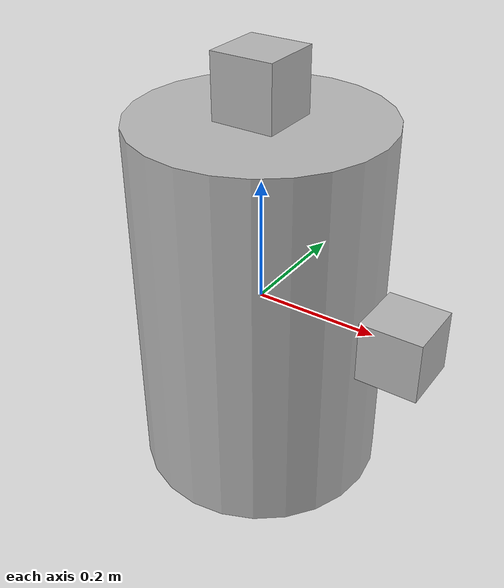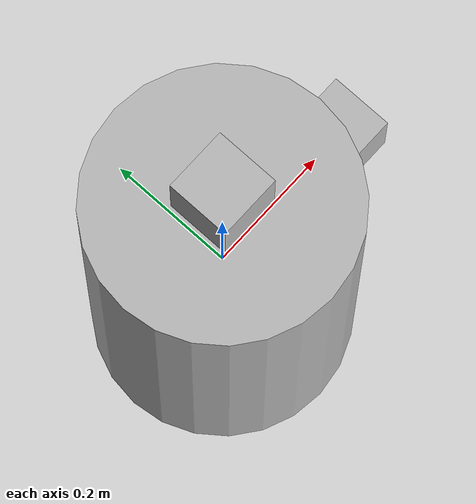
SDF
<?xml version='1.0'?>
<sdf version="1.4">
<model name="payload">
  <link name="body">
    <visual name="payload_vis">
      <geometry>
        <cylinder>
        	<length>0.6</length>
        	<radius>0.2</radius>
        </cylinder>
      </geometry>
    </visual>
    <collision name="payload_col">
      <geometry>
      	<cylinder>
        	<length>0.6</length>
        	<radius>0.2</radius>
        </cylinder>
      </geometry>
    </collision>
    <inertial>
      <mass>10</mass>
      <inertia>
      	 <ixx>4</ixx>
      	 <ixy>.5</ixy>
      	 <ixz>.5</ixz>
      	 <iyy>4</iyy>
      	 <iyz>0.0</iyz>
      	 <izz>2</izz>
      </inertia>
    </inertial>
    <gravity>0</gravity>
    </link>
    <link name="cubesat1">
      <pose> 0 0 .35 0 0 0 </pose>
      <visual name="sat1_vis">
        <geometry>
          <box>
            <size>.1 .1 .1 </size>
          </box>
        </geometry>
      </visual>
      <collision name="sat1_col">
        <geometry>
          <box>
            <size>.1 .1 .1 </size>
          </box>
          </geometry>
      </collision>
      <gravity>0</gravity>
    </link>
    <link name="cubesat2">
      <pose> .25 0 0 0 0 0 </pose>
      <visual name="sat1_vis">
        <geometry>
          <box>
            <size>.1 .1 .1 </size>
          </box>
        </geometry>
      </visual>
      <collision name="sat1_col">
        <geometry>
          <box>
            <size>.1 .1 .1 </size>
          </box>
          </geometry>
      </collision>
      <gravity>0</gravity>
    </link>
    <joint name="bot1link" type="fixed">
      <parent>body</parent>
      <child>cubesat1</child>
    </joint>
    <joint name="bot2link" type="fixed">
      <parent>body</parent>
      <child>cubesat2</child>
    </joint>
    <plugin name="forcePlugin" filename="libforcePlugin.so" />
</model>
</sdf>
